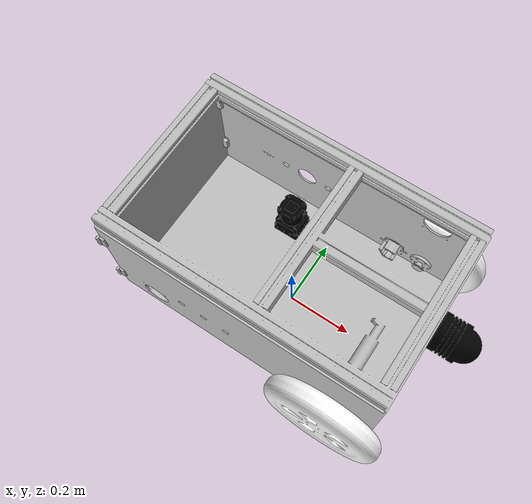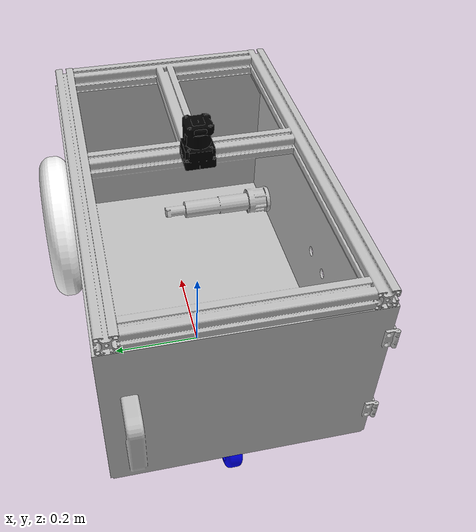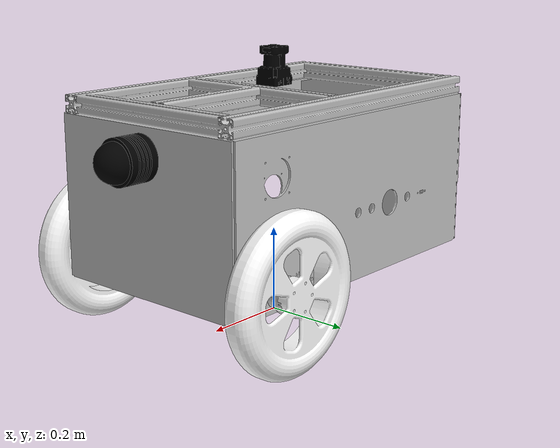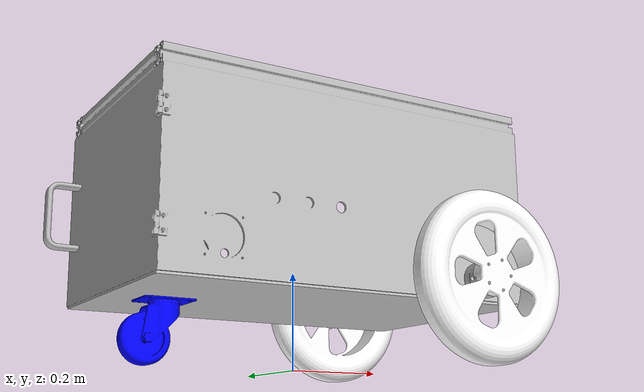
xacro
<?xml version="1.0" ?>
<robot name="rikkert" xmlns:xacro="http://ros.org/wiki/xacro">

  <!-- ****************** ROBOT CONSTANTS *******************************  -->
  <!-- Define the size of the robot's main chassis in meters -->
  <xacro:property name="base_width" value="0.50"/>
  <xacro:property name="base_length" value="0.81"/>
  <xacro:property name="base_height" value="0.41"/>

  <!-- Define the shape of the robot's two back wheels in meters -->
  <xacro:property name="wheel_radius" value="0.17"/>
  <xacro:property name="wheel_width" value="0.06"/>
  <xacro:property name="wheel_y_offset" value="0.285"/>

  <!-- x-axis points forward, y-axis points to left, z-axis points upwards -->
  <!-- Define the gap between the wheel and chassis along y-axis in meters -->
  <xacro:property name="wheel_ygap" value="0.035"/>

  <!-- Position the wheels along the z-axis -->
  <xacro:property name="z_offset" value="0.125"/>
  <xacro:property name="wheel_offset" value="0.03"/>

  <xacro:property name="castor_offset" value="0.12"/>

  <!-- Define intertial property macros  -->
  <xacro:macro name="box_inertia" params="m w h d">
    <inertial>
      <origin xyz="0 0 0" rpy="${pi/2} 0 ${pi/2}"/>
      <mass value="${m}"/>
      <inertia ixx="${(m/12) * (h*h + d*d)}" ixy="0.0" ixz="0.0" iyy="${(m/12) * (w*w + d*d)}" iyz="0.0" izz="${(m/12) * (w*w + h*h)}"/>
    </inertial>
  </xacro:macro>

  <xacro:macro name="cylinder_inertia" params="m r h">
    <inertial>
      <origin xyz="0 0 0" rpy="${pi/2} 0 0" />
      <mass value="${m}"/>
      <inertia ixx="${(m/12) * (3*r*r + h*h)}" ixy = "0" ixz = "0" iyy="${(m/12) * (3*r*r + h*h)}" iyz = "0" izz="${(m/2) * (r*r)}"/>
    </inertial>
  </xacro:macro>

  <xacro:macro name="sphere_inertia" params="m r">
    <inertial>
      <mass value="${m}"/>
      <inertia ixx="${(2/5) * m * (r*r)}" ixy="0.0" ixz="0.0" iyy="${(2/5) * m * (r*r)}" iyz="0.0" izz="${(2/5) * m * (r*r)}"/>
    </inertial>
  </xacro:macro>

  <!-- ****************** ROBOT BASE FOOTPRINT ***************************  -->
  <!-- Define the center of the main robot chassis projected on the ground -->
  <link name="base_footprint"/>

  <!-- ********************** ROBOT BASE *********************************  -->
  <link name="base_link">
    <visual>
      <origin xyz="0 0 -${z_offset}" rpy="0 0 ${pi/2}"/>
      <geometry>
        <mesh filename="package://rikkert_description/meshes/Base_platform.stl" scale="0.001 0.001 0.001" />
      </geometry>
      <material name="Grey">
        <color rgba="${191/255} ${191/255} ${191/255} 1.0"/>
      </material>
    </visual>

    <collision>
      <origin xyz="0 0 -${z_offset}" rpy="0 0 ${pi/2}"/>
      <geometry>
        <mesh filename="package://rikkert_description/meshes/Base_platform.stl" scale="0.001 0.001 0.001" />
      </geometry>
    </collision>

    <xacro:box_inertia m="40.0" w="${base_width}" d="${base_length}" h="${base_height}"/>

  </link>

    <!-- The base footprint of the robot is located underneath the chassis -->
  <joint name="footprint_base" type="fixed">
    <parent link="base_footprint"/>
    <child link="base_link" />
    <origin xyz="0.0 0.0 ${z_offset}" rpy="0 0 0"/>
  </joint>

  <!-- *********************** DRIVE WHEELS ******************************  -->

    <link name="right_wheel">
        <visual>
            <origin xyz="0 0 0" rpy="0 0 ${-pi/2}"/>
            <geometry>
                <mesh filename="package://rikkert_description/meshes/Drive_Wheel.stl" scale="0.001 0.001 0.001" />
            </geometry>
            <material name="White">
                <color rgba="${255/255} ${255/255} ${255/255} 1.0"/>
            </material>
        </visual>

        <collision>
            <origin xyz="0 0 0" rpy="0 0 ${-pi/2}"/>
            <geometry>
                <mesh filename="package://rikkert_description/meshes/Drive_Wheel.stl" scale="0.001 0.001 0.001" />
            </geometry>
        </collision>
        <xacro:cylinder_inertia m="110.5" r="${wheel_radius}" h="${wheel_width}"/>
    </link>

<!-- Connect the wheels to the base_link at the appropriate location, and
        define a continuous joint to allow the wheels to freely rotate about
        an axis -->
    <joint name="right_wheel_joint" type="continuous">
        <parent link="base_link"/>
        <child link="right_wheel"/>
        <origin xyz="${base_width/2 + wheel_offset} -${wheel_y_offset} 0.05" rpy="0 0 0"/>
        <axis xyz="0 1 0"/>
    </joint>

    <link name="left_wheel">
        <visual>
            <origin xyz="0 0 0" rpy="0 0 ${pi/2}"/>
            <geometry>
                <mesh filename="package://rikkert_description/meshes/Drive_Wheel.stl" scale="0.001 0.001 0.001" />
            </geometry>
            <material name="White">
                <color rgba="${255/255} ${255/255} ${255/255} 1.0"/>
            </material>
        </visual>

        <collision>
            <origin xyz="0 0 0" rpy="0 0 ${pi/2}"/>
            <geometry>
                <mesh filename="package://rikkert_description/meshes/Drive_Wheel.stl" scale="0.001 0.001 0.001" />
            </geometry>
        </collision>
        <xacro:cylinder_inertia m="110.5" r="${wheel_radius}" h="${wheel_width}"/>
    </link>

<!-- Connect the wheels to the base_link at the appropriate location, and
        define a continuous joint to allow the wheels to freely rotate about
        an axis -->
<joint name="left_wheel_joint" type="continuous">
    <parent link="base_link"/>
    <child link="left_wheel"/>
    <origin xyz="${base_width/2 + wheel_offset} ${wheel_y_offset} 0.05" rpy="0 0 0"/>
    <axis xyz="0 1 0"/>
</joint>

  <!-- *********************** CASTER WHEEL ******************************  -->
  <!-- We add a caster wheel. It will be modeled as sphere.
       We define the wheel’s geometry, material and the joint to connect it to
       base_link at the appropriate location. -->
  <link name="rear_caster">
    <visual>
      <origin xyz="0 0 0" rpy="${pi} 0 ${pi}"/>
      <geometry>
        <mesh filename="package://rikkert_description/meshes/Castor_Wheel.stl" scale="0.001 0.001 0.001" />
      </geometry>
      <material name="Blue">
        <color rgba="${0/255} ${0/255} ${255/255} 1.0"/>
      </material>
    </visual>
    <collision>
      <origin xyz="0 0 0" rpy="${pi} 0 ${pi}"/>
      <geometry>
        <mesh filename="package://rikkert_description/meshes/Castor_Wheel.stl" scale="0.001 0.001 0.001" />
      </geometry>
    </collision>
    <xacro:sphere_inertia m="10.05" r="${wheel_radius}"/>
  </link>

  <joint name="caster_joint" type="fixed">
    <parent link="base_link"/>
    <child link="rear_caster"/>
    <origin xyz="${-(base_length/2 - castor_offset)} 0 0" rpy="0 0 0"/>
  </joint>

 <!-- ********************** SENSORS **************************** -->
    <link name="hokuyo">
        <visual>
            <origin xyz="0 0 0" rpy="0 0 0"/>
            <geometry>
                <mesh filename="package://rikkert_description/meshes/Hokuyo_UTM-30LX.stl" scale="0.01 0.01 0.01" />
            </geometry>
            <material name="black">
                <color rgba="${0/255} ${0/255} ${0/255} 0.9"/>
            </material>
        </visual>

        <collision>
            <origin xyz="0 0 0" rpy="0 0 0"/>
            <geometry>
                <mesh filename="package://rikkert_description/meshes/Hokuyo_UTM-30LX.stl" scale="0.01 0.01 0.01" />
            </geometry>
        </collision>
        <xacro:cylinder_inertia m="110.5" r="${wheel_radius}" h="${wheel_width}"/>
    </link>

  <joint name="hokuyo_joint" type="fixed">
    <parent link="base_link"/>
    <child link="hokuyo"/>
    <origin xyz="0 0 ${base_height+0.005}" rpy="0 0 0"/>
  </joint>

  <link name="rs_bpearl">
    <visual>
        <origin xyz="0 0 0" rpy="0 0 0"/>
        <geometry>
            <mesh filename="package://rikkert_description/meshes/RS_BPearl.stl" scale="0.001 0.001 0.001" />
        </geometry>
        <material name="black">
            <color rgba="${0/255} ${0/255} ${0/255} 0.9"/>
        </material>
    </visual>

    <collision>
        <origin xyz="0 0 0" rpy="0 0 0"/>
        <geometry>
            <mesh filename="package://rikkert_description/meshes/RS_BPearl.stl" scale="0.001 0.001 0.001" />
        </geometry>
    </collision>
    <xacro:cylinder_inertia m="110.5" r="${wheel_radius}" h="${wheel_width}"/>
</link>

  <joint name="bpearl_joint" type="fixed">
    <parent link="base_link"/>
    <child link="rs_bpearl"/>
    <origin xyz="${base_length/2+0.0025} 0 ${base_height-0.1}" rpy="0 ${-pi/2} ${pi}"/>
  </joint>

</robot>
